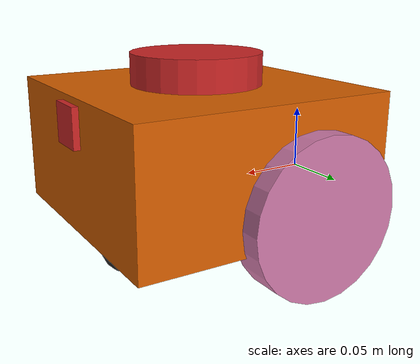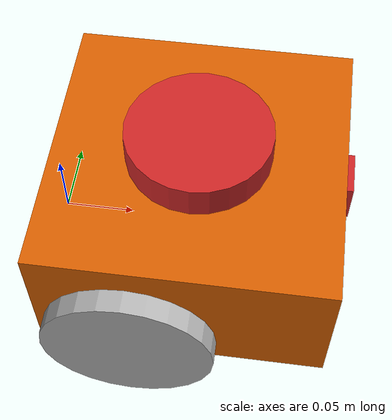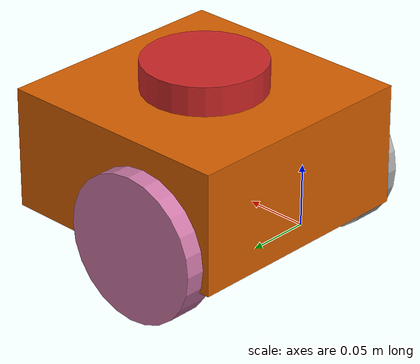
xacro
<?xml version="1.0"?>
<robot xmlns:xacro="http://www.ros.org/wiki/xacro" name="bot" >

    <xacro:include filename="inertial_macros.xacro"/>
    <xacro:include filename="lidar.xacro"/>
    <xacro:include filename="camera.xacro"/>
    <xacro:include filename="diff_drive.xacro"/>

    <xacro:property name="PI" value="3.14159"/>
    <xacro:property name="chassis_length" value="0.2"/>
    <xacro:property name="chassis_width" value="0.2"/>
    <xacro:property name="chassis_height" value="0.1"/>
    <xacro:property name="chassis_mass" value="1.0"/>
    <xacro:property name="wheel_radius" value="0.06"/>
    <xacro:property name="wheel_thickness" value="0.026"/>
    <xacro:property name="wheel_mass" value="0.5"/>
    <xacro:property name="wheel_offset_y" value="0.1026"/>
    <xacro:property name="wheel_offset_z" value="0.02"/>
    <xacro:property name="caster_wheel_radius" value="0.021"/>
    <xacro:property name="caster_wheel_mass" value="0.5"/>
    <xacro:property name="caster_wheel_offset_x" value="0.161"/>
    <xacro:property name="caster_wheel_offset_z" value="${wheel_offset_z - wheel_radius + caster_wheel_radius}"/>

    <!-- BASE LINK -->

    <link name="base_link">

    </link>

    <!-- BASE_FOOTPRINT LINK -->

    <joint name="base_footprint_joint" type="fixed">
        <parent link="base_link"/>
        <child link="base_footprint"/>
        <origin xyz="0 0 0" rpy="0 0 0"/>
    </joint>

    <link name="base_footprint">
    </link>

    <!-- CHASSIS LINK -->
    <link name="chassis">
        <visual>
            <origin xyz="${chassis_length/2} 0 ${chassis_height/2}"/>
            <geometry>
                <box size="${chassis_length} ${chassis_width} ${chassis_height}"/>
            </geometry>
        </visual>
        <collision>
            <origin xyz="${chassis_length/2} 0 ${chassis_height/2}"/>
            <geometry>
                <box size="${chassis_length} ${chassis_width} ${chassis_height}"/>
            </geometry>
        </collision>
        <xacro:inertial_box mass="0.5" x="${chassis_length}" y="${chassis_width}" z="${chassis_height}">
            <origin xyz="${chassis_length/2} 0 ${chassis_height/2}" rpy="0 0 0"/>
        </xacro:inertial_box>
    </link>

    <joint name="chassis_joint" type="fixed">
        <parent link="base_link"/>
        <child link="chassis"/>
        <origin xyz="0 0 ${-wheel_offset_z}"/>
    </joint>

    <!-- LEFT WHEEL LINK -->

    <joint name="left_wheel_joint" type="continuous">
        <parent link="base_link"/>
        <child link="left_wheel"/>
        <origin xyz="0.065 ${wheel_offset_y} 0" rpy="-${PI/2} 0 0" />
        <axis xyz="0 0 1"/>
    </joint>

    <link name="left_wheel">
        <visual>
            <geometry>
                <cylinder radius="${wheel_radius}" length="${wheel_thickness}"/>
            </geometry>
        </visual>
        <collision>
            <geometry>
                <sphere radius="${wheel_radius}"/>
            </geometry>
        </collision>
        <xacro:inertial_cylinder mass="${wheel_mass}" length="${wheel_thickness}" radius="${wheel_radius}">
            <origin xyz="0 0 0" rpy="0 0 0"/>
        </xacro:inertial_cylinder>
    </link>

    <!-- RIGHT WHEEL LINK -->

    <joint name="right_wheel_joint" type="continuous">
        <parent link="base_link"/>
        <child link="right_wheel"/>
        <origin xyz="0.065 ${-wheel_offset_y} 0" rpy="${pi/2} 0 0" />
        <axis xyz="0 0 -1"/>
    </joint>

    <link name="right_wheel">
        <visual>
            <geometry>
                <cylinder radius="${wheel_radius}" length="${wheel_thickness}"/>
            </geometry>
        </visual>
        <collision>
            <geometry>
                <sphere radius="${wheel_radius}"/>
            </geometry>
        </collision>
        <xacro:inertial_cylinder mass="${wheel_mass}" length="${wheel_thickness}" radius="${wheel_radius}">
            <origin xyz="0 0 0" rpy="0 0 0"/>
        </xacro:inertial_cylinder>
    </link>

    <!-- CASTER WHEEL LINK -->

    <joint name="caster_wheel_joint" type="fixed">
        <parent link="chassis"/>
        <child link="caster_wheel"/>
        <origin xyz="${caster_wheel_offset_x} 0 ${caster_wheel_offset_z}"/>
    </joint>

    <link name="caster_wheel">
        <visual>
            <geometry>
                <sphere radius="${caster_wheel_radius}"/>
            </geometry>
        </visual>
        <collision>
            <geometry>
                <sphere radius="${caster_wheel_radius}"/>
            </geometry>
        </collision>
        <xacro:inertial_sphere mass="${caster_wheel_mass}" radius="${caster_wheel_radius}">
            <origin xyz="0 0 0" rpy="0 0 0"/>
        </xacro:inertial_sphere>
    </link>

    <gazebo reference="caster_wheel">
        <material>black</material>
        <mu1 value="0.001"/>
        <mu2 value="0.001"/>
    </gazebo>

</robot>

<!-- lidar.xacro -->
<robot xmlns:xacro="http://www.ros.org/wiki/xacro">

    <joint name="laser_joint" type="fixed">
        <parent link="chassis"/>
        <child link="laser_frame"/>
        <origin xyz="0.1 0 0.104" rpy="0 0 0"/>
    </joint>

    <link name="laser_frame">
        <visual>
            <geometry>
                <cylinder radius="0.05" length="0.04"/>
            </geometry>
        </visual>
        <collision>
            <geometry>
                <cylinder radius="0.05" length="0.04"/>
            </geometry>
        </collision>
        <xacro:inertial_cylinder mass="0.1" length="0.04" radius="0.05">
            <origin xyz="0 0 0" rpy="0 0 0"/>
        </xacro:inertial_cylinder>
    </link>

    <gazebo reference="laser_frame">
        <material>Gazebo/Red</material>
        <sensor name="laser" type="ray">
            <pose> 0 0 0 0 0 0 </pose>
            <visualize>true</visualize>
            <update_rate>10</update_rate>
            <ray>
                <scan>
                    <horizontal>
                        <samples>360</samples>
                        <min_angle>-3.14</min_angle>
                        <max_angle>3.14</max_angle>
                    </horizontal>
                </scan>
                <range>
                    <min>0.3</min>
                    <max>12</max>
                </range>
            </ray>
            <plugin name="laser_controller" filename="libgazebo_ros_ray_sensor.so">
                <ros>
                <argument>~/out:=scan</argument>
                </ros>
                <output_type>sensor_msgs/LaserScan</output_type>
                <frame_name>laser_frame</frame_name>
            </plugin>
        </sensor>
    </gazebo>

</robot>

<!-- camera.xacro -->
<robot xmlns:xacro="http://www.ros.org/wiki/xacro">

    <joint name="camera_joint" type="fixed">
        <parent link="chassis"/>
        <child link="camera_link"/>
        <origin xyz="0.2 0 0.08" rpy="0 0 0"/>
    </joint>

    <link name="camera_link">
        <visual>
            <geometry>
                <box size="0.01 0.03 0.03"/>
            </geometry>
        </visual>
    </link>

    <joint name="camera_optical_joint" type="fixed">
        <origin xyz="0 0 0" rpy="${-pi/2} 0 ${-pi/2}" />
        <parent link="camera_link" />
        <child link="camera_link_optical" />
    </joint>

    <link name="camera_link_optical"></link>

    <gazebo reference="camera_link">
        <material>Gazebo/Red</material>
        <sensor name="camera" type="camera">
            <pose> 0 0 0 0 0 0 </pose>
            <visualize>true</visualize>
            <update_rate>10</update_rate>
            <camera>
                <horizontal_fov>1.089</horizontal_fov>
                <image>
                    <format>R8G8B8</format>
                    <width>640</width>
                    <height>480</height>
                </image>
                <clip>
                    <near>0.05</near>
                    <far>8.0</far>
                </clip>
            </camera>
            <plugin name="camera_controller" filename="libgazebo_ros_camera.so">
                <frame_name>camera_link_optical</frame_name>
            </plugin>
        </sensor>
    </gazebo>

</robot>
